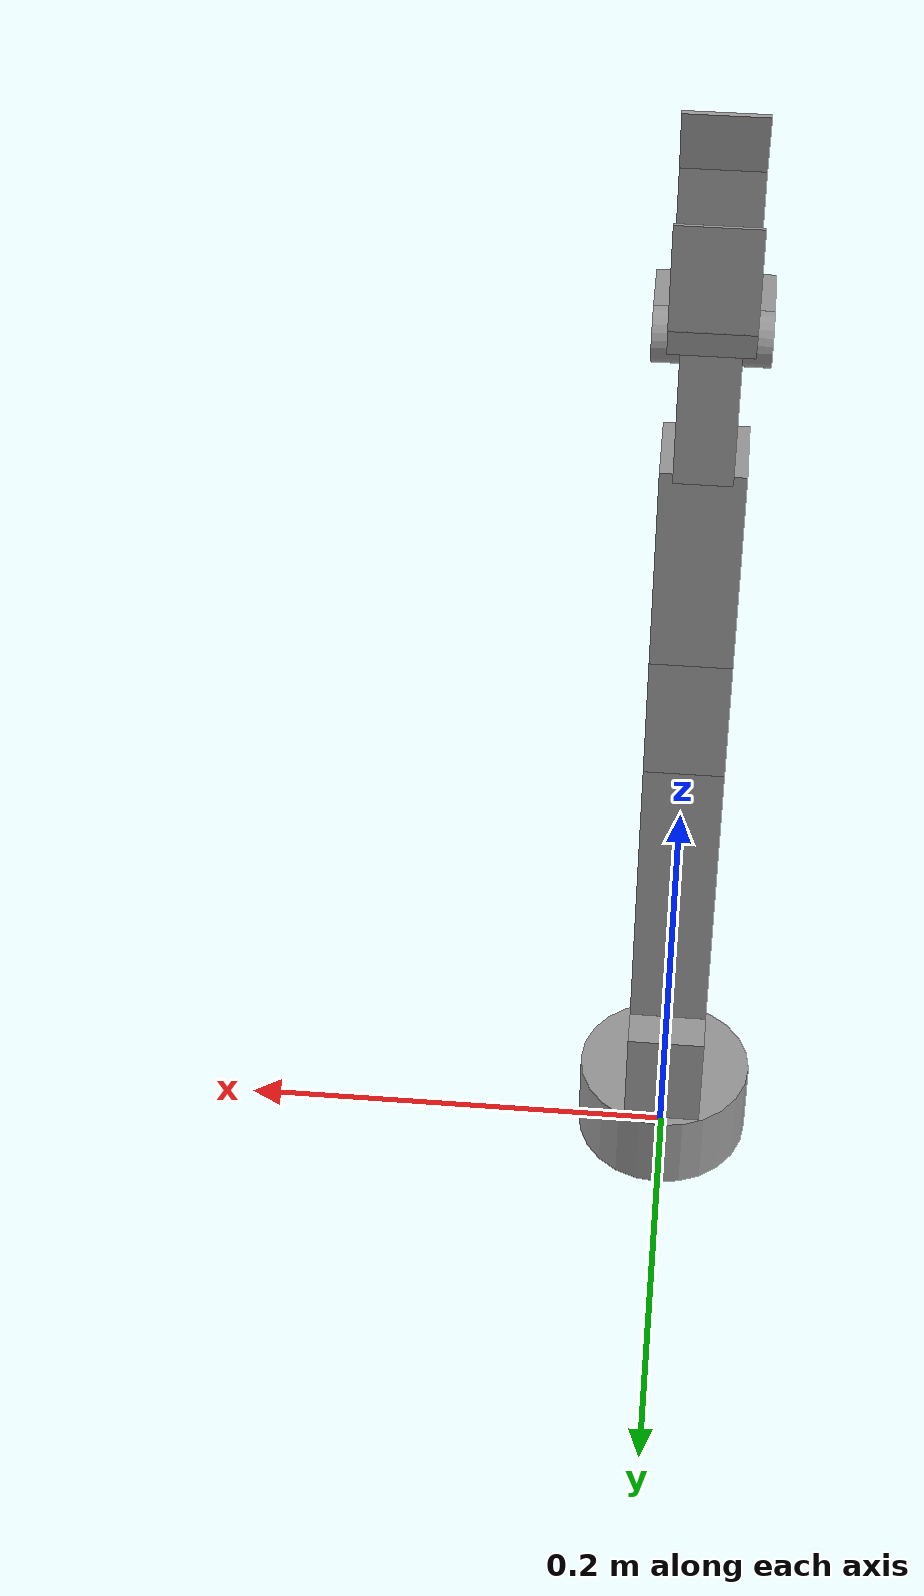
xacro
<?xml version="1.0" ?>
<robot name="dynamixel_arm" xmlns:xacro="http://ros.org/wiki/xacro">

	<!-- constants for robot dimentions -->
	<xacro:property name="pi" value="3.141592"/>

	<!-- inertial for box -->

	<!-- inertial for cylinder -->

	<!-- inertial for box -->
	<xacro:macro
		name="default_box_inertial"
		params="mass depth width height x_offset y_offset z_offset">
		<inertial>
			<origin xyz="${x_offset} ${y_offset} ${z_offset}" rpy="0 0 0"/>
			<mass value="${mass}"/>
			<inertia
				ixx="1.0" ixy="0.0" ixz="0.0"
				iyy="1.0" iyz="0.0"
				izz="1.0"/>
		</inertial>
	</xacro:macro>

	<!-- inertial for cylinder -->
	<xacro:macro
		name="default_cylinder_inertial"
		params="mass length radius x_offset y_offset z_offset">
		<inertial>
			<origin xyz="${x_offset} ${y_offset} ${z_offset}" rpy="0 0 0"/>
			<mass value="${mass}"/>
			<inertia
				ixx="1.0" ixy="0.0" ixz="0.0"
				iyy="1.0" iyz="0.0"
				izz="1.0"/>
		</inertial>
	</xacro:macro>

	<!-- import Rviz color -->
	<xacro:include filename="$(find infant_description)/materials/materials.xacro"/>
	<!-- import Gazebo -->
	<xacro:include filename="$(find infant_description)/urdf/dynamixel_arm.gazebo.xacro"/>
	<link name="world"/>

	<joint name="fixed" type="fixed">
		<parent link="world"/>
		<child link="arm_base_link"/>
	</joint>

	<!-- Dynamixel Arm -->

	<link name="arm_base_link">
		<visual>
			<geometry>
				<cylinder length="0.040" radius="0.040"/>
			</geometry>
			<origin xyz="0 0 ${0.040/2}" rpy="0 0 0"/>
			<material name="gray"/>
		</visual>
		<collision>
			<geometry>
				<cylinder length="0.040" radius="0.040"/>
			</geometry>
			<origin xyz="0 0 ${0.040/2}" rpy="0 0 0"/>
		</collision>
		<xacro:default_cylinder_inertial
			mass="0.1" length="0.040" radius="0.040"
			x_offset="0.0" y_offset="0.0" z_offset="-${0.040/2}"/>
	</link>

	<joint name="joint1" type="revolute">
		<parent link="arm_base_link"/>
		<child link="link1"/>
		<origin xyz="0 0 ${0.040}" rpy="0 0 0"/>
		<axis xyz="0 0 1"/>
		<limit effort="6.0" lower="-${175/180*pi}" upper="${175/180*pi}" velocity="${11/6*pi}"/>
	</joint>

	<link name="link1">
		<visual>
			<geometry>
				<box size="0.035 0.070 0.050"/>
			</geometry>
			<origin xyz="0 0 ${0.050/2}" rpy="0 0 0"/>
			<material name="gray"/>
		</visual>
		<collision>
			<geometry>
				<box size="0.035 0.070 0.050"/>
			</geometry>
			<origin xyz="0 0 ${0.050/2}" rpy="0 0 0"/>
		</collision>
		<xacro:default_box_inertial
			mass="0.1" depth="0.035" width="0.070" height="0.050"
			x_offset="0.31" y_offset="0.0" z_offset="${0.050/2}"/>
	</link>

	<joint name="joint2" type="revolute">
		<parent link="link1"/>
		<child link="link2"/>
		<origin xyz="0 0 ${0.050}" rpy="0 0 0"/>
		<axis xyz="0 -1 0"/>
		<limit effort="${2*6.0}" lower="-${95/180*pi}" upper="${95/180*pi}" velocity="${11/6*pi}"/>
	</joint>

	<link name="link2">
		<visual>
			<geometry>
				<box size="0.035 0.035 0.150"/>
			</geometry>
			<origin xyz="0 0 ${0.150/2}" rpy="0 0 0"/>
			<material name="gray"/>
		</visual>
		<collision>
			<geometry>
				<box size="0.035 0.035 0.150"/>
			</geometry>
			<origin xyz="0 0 ${0.150/2}" rpy="0 0 0"/>
		</collision>
		<xacro:default_box_inertial
			mass="0.1" depth="0.035" width="0.035" height="0.150"
			x_offset="0.0" y_offset="0.0" z_offset="${0.150}"/>
	</link>

	<joint name="joint3" type="revolute">
		<parent link="link2"/>
		<child link="link3"/>
		<origin xyz="0 0 0.150" rpy="0 0 0"/>
		<axis xyz="0 -1 0"/>
		<limit effort="6.0" lower="-${150/180*pi}" upper="${10/180*pi}" velocity="${11/6*pi}"/>
	</joint>

	<link name="link3">
		<visual>
			<geometry>
				<box size="0.035 0.035 0.060"/>
			</geometry>
			<origin xyz="0 0 ${0.060/2}" rpy="0 0 0"/>
			<material name="gray"/>
		</visual>
		<collision>
			<geometry>
				<box size="0.035 0.035 0.060"/>
			</geometry>
			<origin xyz="0 0 ${0.060/2}" rpy="0 0 0"/>
		</collision>
		<xacro:default_box_inertial
			mass="0.1" depth="0.035" width="0.035" height="0.060"
			x_offset="0.0" y_offset="0.0" z_offset="${0.060}"/>
	</link>

	<joint name="joint4" type="revolute">
		<parent link="link3"/>
		<child link="link4"/>
		<origin xyz="0 0 ${0.060}" rpy="0 0 0"/>
		<axis xyz="0 0 1"/>
		<limit effort="6.0" lower="-${175/180*pi}" upper="${175/180*pi}" velocity="${11/6*pi}"/>
	</joint>

	<link name="link4">
		<visual>
			<geometry>
				<box size="0.035 0.035 0.0975"/>
			</geometry>
			<origin xyz="0 0 ${0.0975/2}" rpy="0 0 0"/>
			<material name="gray"/>
		</visual>
		<collision>
			<geometry>
				<box size="0.035 0.035 0.0975"/>
			</geometry>
			<origin xyz="0 0 ${0.0975/2}" rpy="0 0 0"/>
		</collision>
		<xacro:default_box_inertial
			mass="0.1" depth="0.035" width="0.035" height="0.060"
			x_offset="0.0" y_offset="0.0" z_offset="${0.0975/2}"/>
	</link>

	<joint name="joint5" type="revolute">
		<parent link="link4"/>
		<child link="link5"/>
		<origin xyz="0 0 ${0.0975}" rpy="0 0 0"/>
		<axis xyz="0 -1 0"/>
		<limit effort="6.0" lower="-${95/180*pi}" upper="${95/180*pi}" velocity="${11/6*pi}"/>
	</joint>

	<link name="link5">
		<visual>
			<origin xyz="0 0 ${0.061/2}" rpy="0 0 0" />
			<geometry>
				<box size="0.024 0.0475 0.061" />
			</geometry>
			<material name="gray"/>
		</visual>
		<collision>
			<origin xyz="0 0 ${0.061/2}" rpy="0 0 0" />
			<geometry>
				<box size="0.024 0.0475 0.061" />
			</geometry>
		</collision>

		<visual>
			<origin xyz="0 ${0.03295-0.005} ${0.065727241+0.003}" rpy="-0.52359878 0 0" />
			<geometry>
				<box size="0.034 0.0014 0.019" />
			</geometry>
			<material name="gray"/>
		</visual>
		<collision>
			<origin xyz="0 ${0.03295-0.005} ${0.065727241+0.003}" rpy="-0.52359878 0 0" />
			<geometry>
				<box size="0.034 0.0014 0.019" />
			</geometry>
		</collision>

		<visual>
			<origin xyz="0 ${0.0377-0.005} ${0.09665+0.003}" rpy="0 0 0" />
			<geometry>
				<box size="0.034 0.0014 0.0454" />
			</geometry>
			<material name="gray"/>
		</visual>
		<collision>
			<origin xyz="0 ${0.0377-0.005} ${0.09665+0.003}" rpy="0 0 0" />
			<geometry>
				<box size="0.034 0.0014 0.0454" />
			</geometry>
		</collision>

		<xacro:default_box_inertial
			mass="0.1" depth="0.024" width="0.0475" height="0.061"
			x_offset="0.0" y_offset="0.0" z_offset="${0.061/2}"/>

	</link>

	<joint name="joint6" type="revolute">
		<parent link="link5"/>
		<child link="link6"/>
		<origin xyz="0 -0.0145 0.045" rpy="0 0 0"/>
		<axis xyz="-1 0 0"/>
		<limit effort="6.0" lower="-${40/180*pi}" upper="${20/180*pi}" velocity="${11/6*pi}"/>
	</joint>

	<link name="link6">
		<visual>
			<origin xyz="0 0 0" rpy="0 1.57079632675 0" />
			<geometry>
				<cylinder radius="0.012" length="0.0475" />
			</geometry>
			<material name="gray"/>
		</visual>
		<collision>
			<origin xyz="0 0 0" rpy="0 1.57079632675 0" />
			<geometry>
				<cylinder radius="0.012" length="0.0475" />
			</geometry>
		</collision>

		<visual>
			<origin xyz="0 -0.013 0" rpy="0 0 0" />
			<geometry>
				<box size="0.0475 0.026 0.024" />
			</geometry>
			<material name="gray"/>
		</visual>
		<collision>
			<origin xyz="0 -0.013 0" rpy="0 0 0" />
			<geometry>
				<box size="0.0475 0.026 0.024" />
			</geometry>
		</collision>

		<visual>
			<origin xyz="0 -0.0267 0.023" rpy="0 0 0" />
			<geometry>
				<box size="0.034 0.0014 0.070" />
			</geometry>
			<material name="gray"/>
		</visual>
		<collision>
			<origin xyz="0 -0.0267 0.023" rpy="0 0 0" />
			<geometry>
				<box size="0.034 0.0014 0.070" />
			</geometry>
		</collision>

		<visual>
			<origin xyz="0 -0.0166252378 0.07545" rpy="-0.52359878 0 0" />
			<geometry>
				<box size="0.034 0.0014 0.040299" />
			</geometry>
			<material name="gray"/>
		</visual>
		<collision>
			<origin xyz="0 -0.0166252378 0.07545" rpy="-0.52359878 0 0" />
			<geometry>
				<box size="0.034 0.0014 0.040299" />
			</geometry>
		</collision>

		<xacro:default_box_inertial
			mass="0.1" depth="0.0475" width="0.026" height="0.024"
			x_offset="0.0" y_offset="0.0" z_offset="0.0"/>

	</link>

	<!-- transmission for Dynamixel Arm-->
	<transmission name="tran1">
		<type>transmission_interface/SimpleTransmission</type>
		<joint name="joint1">
			<hardwareInterface>PositionJointInterface</hardwareInterface>
		</joint>
		<actuator name="motor1">
			<hardwareInterface>PositionJointInterface</hardwareInterface>
			<mechanicalReduction>1</mechanicalReduction>
		</actuator>
	</transmission>

	<transmission name="tran2">
		<type>transmission_interface/SimpleTransmission</type>
		<joint name="joint2">
			<hardwareInterface>PositionJointInterface</hardwareInterface>
		</joint>
		<actuator name="motor2">
			<hardwareInterface>PositionJointInterface</hardwareInterface>
			<mechanicalReduction>1</mechanicalReduction>
		</actuator>
	</transmission>

	<transmission name="tran3">
		<type>transmission_interface/SimpleTransmission</type>
		<joint name="joint3">
			<hardwareInterface>PositionJointInterface</hardwareInterface>
		</joint>
		<actuator name="motor3">
			<hardwareInterface>PositionJointInterface</hardwareInterface>
			<mechanicalReduction>1</mechanicalReduction>
		</actuator>
	</transmission>

	<transmission name="tran4">
		<type>transmission_interface/SimpleTransmission</type>
		<joint name="joint4">
			<hardwareInterface>PositionJointInterface</hardwareInterface>
		</joint>
		<actuator name="motor4">
			<hardwareInterface>PositionJointInterface</hardwareInterface>
			<mechanicalReduction>1</mechanicalReduction>
		</actuator>
	</transmission>

	<transmission name="tran5">
		<type>transmission_interface/SimpleTransmission</type>
		<joint name="joint5">
			<hardwareInterface>PositionJointInterface</hardwareInterface>
		</joint>
		<actuator name="motor5">
			<hardwareInterface>PositionJointInterface</hardwareInterface>
			<mechanicalReduction>1</mechanicalReduction>
		</actuator>
	</transmission>

	<transmission name="tran6">
		<type>transmission_interface/SimpleTransmission</type>
		<joint name="joint6">
			<hardwareInterface>PositionJointInterface</hardwareInterface>
		</joint>
		<actuator name="motor6">
			<hardwareInterface>PositionJointInterface</hardwareInterface>
			<mechanicalReduction>1</mechanicalReduction>
		</actuator>
	</transmission>

</robot>
